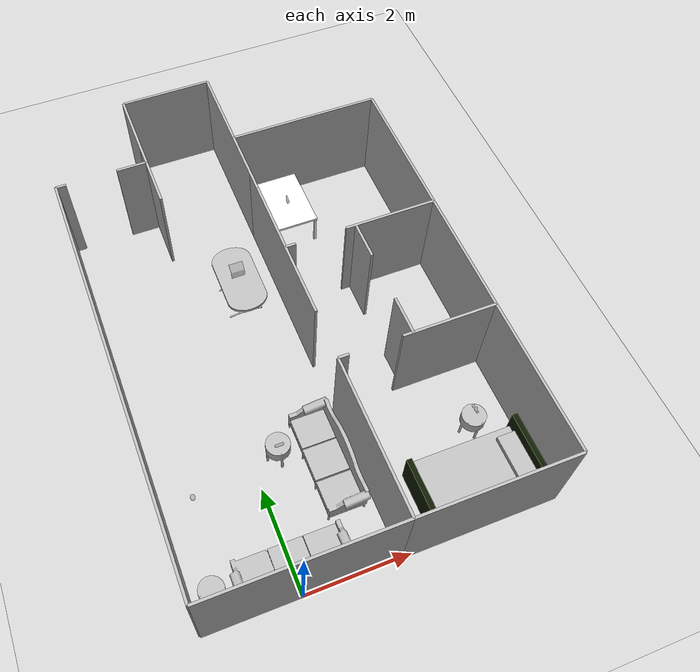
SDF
<sdf version="1.5">
 <world name="myworld">
  <include><uri>model://sun</uri></include>
  <include><uri>model://ground_plane</uri></include>
  <include><uri>model://hri_two_bedrooms</uri></include>
  <include><uri>model://hri_couch</uri><pose>1.25 2 0 0 0 3.1416</pose></include>
  <include><uri>model://hri_couch</uri><pose>0 0.5 0 0 0 1.5708</pose></include>
  <include><uri>model://hri_roundtable</uri><pose>0.5 2.5 0 0 0 0</pose></include>
  <include><uri>model://hri_roundtable</uri><pose>-1.4 0.5 0 0 0 0</pose></include>
  <include><uri>model://hri_dinnertable</uri><pose>1 6 0 0 0 0</pose></include>
  <include><uri>model://hri_bed</uri><pose>3.5 0.75 0 0 0 0</pose></include>
  <include><uri>model://hri_roundtable</uri><pose>4 1.75 0 0 0 0</pose></include>
  <include><uri>model://hri_desk</uri><pose>2.5 7.5 0 0 0 1.5708</pose></include>
  <include><uri>model://hri_roundtable</uri><pose>4.25 6 0 0 0 0</pose></include>
  <include><uri>model://hri_obj_laptop</uri><pose>1 6 0.9 0 0 0</pose></include>
  <include><uri>model://hri_obj_mug</uri><pose>-1.2 2 0.6 0 0 0</pose></include>
  <include><uri>model://hri_obj_glassescase</uri><pose>0.5 2.4 0.6 0 0 0</pose></include>
  <include><uri>model://hri_obj_statue</uri><pose>4 1.7 0.6 0 0 0</pose></include>
  <include><uri>model://hri_obj_fork</uri><pose>4.1 6 0.6 0 0 0</pose></include>
  <include><uri>model://hri_obj_monitor</uri><pose>2.5 7.2 0.9 0 0 0</pose></include>
 </world>
</sdf>

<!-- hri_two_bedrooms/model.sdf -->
<sdf version="1.4">
<model name="hri_two_bedrooms">
  <pose>0 0 0 0 0 0</pose>
  <static>true</static>

    <link name="wall1">
      <pose>0 0 1 0 0 0</pose>
      <inertial>
        <mass>1000.0</mass>
        <inertia> <!-- interias are tricky to compute -->
          <!-- http://answers.gazebosim.org/question/4372/the-inertia-matrix-explained/ -->
          <ixx>0.083</ixx>       <!-- for a box: ixx = 0.083 * mass * (y*y + z*z) -->
          <ixy>0.0</ixy>         <!-- for a box: ixy = 0 -->
          <ixz>0.0</ixz>         <!-- for a box: ixz = 0 -->
          <iyy>0.083</iyy>       <!-- for a box: iyy = 0.083 * mass * (x*x + z*z) -->
          <iyz>0.0</iyz>         <!-- for a box: iyz = 0 -->
          <izz>0.083</izz>       <!-- for a box: izz = 0.083 * mass * (x*x + y*y) -->
        </inertia>
      </inertial>
      <collision name="collision">
        <geometry>
          <box>
            <size>3.6    0.0500    2.0000</size>
          </box>
        </geometry>
      </collision>
      <visual name="visual">
        <geometry>
          <box>
            <size>3.6    0.0500    2.0000</size>
          </box>
        </geometry>
      </visual>
    </link>

    <link name="wall2">
      <pose>-1.8 4.2 1 0 0 0</pose>
      <inertial>
        <mass>1000.0</mass>
        <inertia> <!-- interias are tricky to compute -->
          <!-- http://answers.gazebosim.org/question/4372/the-inertia-matrix-explained/ -->
          <ixx>0.083</ixx>       <!-- for a box: ixx = 0.083 * mass * (y*y + z*z) -->
          <ixy>0.0</ixy>         <!-- for a box: ixy = 0 -->
          <ixz>0.0</ixz>         <!-- for a box: ixz = 0 -->
          <iyy>0.083</iyy>       <!-- for a box: iyy = 0.083 * mass * (x*x + z*z) -->
          <iyz>0.0</iyz>         <!-- for a box: iyz = 0 -->
          <izz>0.083</izz>       <!-- for a box: izz = 0.083 * mass * (x*x + y*y) -->
        </inertia>
      </inertial>
      <collision name="collision">
        <geometry>
          <box>
            <size>0.0500    8.4    2.0000</size>
          </box>
        </geometry>
      </collision>
      <visual name="visual">
        <geometry>
          <box>
            <size>0.0500    8.4    2.0000</size>
          </box>
        </geometry>
      </visual>
    </link>

    <link name="wall3">
      <pose>-1.7 8.4 1 0 0 0</pose>
      <inertial>
        <mass>1000.0</mass>
        <inertia> <!-- interias are tricky to compute -->
          <!-- http://answers.gazebosim.org/question/4372/the-inertia-matrix-explained/ -->
          <ixx>0.083</ixx>       <!-- for a box: ixx = 0.083 * mass * (y*y + z*z) -->
          <ixy>0.0</ixy>         <!-- for a box: ixy = 0 -->
          <ixz>0.0</ixz>         <!-- for a box: ixz = 0 -->
          <iyy>0.083</iyy>       <!-- for a box: iyy = 0.083 * mass * (x*x + z*z) -->
          <iyz>0.0</iyz>         <!-- for a box: iyz = 0 -->
          <izz>0.083</izz>       <!-- for a box: izz = 0.083 * mass * (x*x + y*y) -->
        </inertia>
      </inertial>
      <collision name="collision">
        <geometry>
          <box>
            <size>0.2    0.0500    2.0000</size>
          </box>
        </geometry>
      </collision>
      <visual name="visual">
        <geometry>
          <box>
            <size>0.2    0.0500    2.0000</size>
          </box>
        </geometry>
      </visual>
    </link>

    <link name="wall4">
      <pose>-0.3 8.4 1 0 0 0</pose>
      <inertial>
        <mass>1000.0</mass>
        <inertia> <!-- interias are tricky to compute -->
          <!-- http://answers.gazebosim.org/question/4372/the-inertia-matrix-explained/ -->
          <ixx>0.083</ixx>       <!-- for a box: ixx = 0.083 * mass * (y*y + z*z) -->
          <ixy>0.0</ixy>         <!-- for a box: ixy = 0 -->
          <ixz>0.0</ixz>         <!-- for a box: ixz = 0 -->
          <iyy>0.083</iyy>       <!-- for a box: iyy = 0.083 * mass * (x*x + z*z) -->
          <iyz>0.0</iyz>         <!-- for a box: iyz = 0 -->
          <izz>0.083</izz>       <!-- for a box: izz = 0.083 * mass * (x*x + y*y) -->
        </inertia>
      </inertial>
      <collision name="collision">
        <geometry>
          <box>
            <size>0.6    0.0500    2.0000</size>
          </box>
        </geometry>
      </collision>
      <visual name="visual">
        <geometry>
          <box>
            <size>0.6    0.0500    2.0000</size>
          </box>
        </geometry>
      </visual>
    </link>

    <link name="wall5">
      <pose>0 9.25 1 0 0 0</pose>
      <inertial>
        <mass>1000.0</mass>
        <inertia> <!-- interias are tricky to compute -->
          <!-- http://answers.gazebosim.org/question/4372/the-inertia-matrix-explained/ -->
          <ixx>0.083</ixx>       <!-- for a box: ixx = 0.083 * mass * (y*y + z*z) -->
          <ixy>0.0</ixy>         <!-- for a box: ixy = 0 -->
          <ixz>0.0</ixz>         <!-- for a box: ixz = 0 -->
          <iyy>0.083</iyy>       <!-- for a box: iyy = 0.083 * mass * (x*x + z*z) -->
          <iyz>0.0</iyz>         <!-- for a box: iyz = 0 -->
          <izz>0.083</izz>       <!-- for a box: izz = 0.083 * mass * (x*x + y*y) -->
        </inertia>
      </inertial>
      <collision name="collision">
        <geometry>
          <box>
            <size>0.0500    1.7    2.0000</size>
          </box>
        </geometry>
      </collision>
      <visual name="visual">
        <geometry>
          <box>
            <size>0.0500    1.7    2.0000</size>
          </box>
        </geometry>
      </visual>
    </link>

    <link name="wall6">
      <pose>0.9 10.1 1 0 0 0</pose>
      <inertial>
        <mass>1000.0</mass>
        <inertia> <!-- interias are tricky to compute -->
          <!-- http://answers.gazebosim.org/question/4372/the-inertia-matrix-explained/ -->
          <ixx>0.083</ixx>       <!-- for a box: ixx = 0.083 * mass * (y*y + z*z) -->
          <ixy>0.0</ixy>         <!-- for a box: ixy = 0 -->
          <ixz>0.0</ixz>         <!-- for a box: ixz = 0 -->
          <iyy>0.083</iyy>       <!-- for a box: iyy = 0.083 * mass * (x*x + z*z) -->
          <iyz>0.0</iyz>         <!-- for a box: iyz = 0 -->
          <izz>0.083</izz>       <!-- for a box: izz = 0.083 * mass * (x*x + y*y) -->
        </inertia>
      </inertial>
      <collision name="collision">
        <geometry>
          <box>
            <size>1.8    0.0500    2.0000</size>
          </box>
        </geometry>
      </collision>
      <visual name="visual">
        <geometry>
          <box>
            <size>1.8    0.0500    2.0000</size>
          </box>
        </geometry>
      </visual>
    </link>

    <link name="wall7">
      <pose>1.8 8.55 1 0 0 0</pose>
      <inertial>
        <mass>1000.0</mass>
        <inertia> <!-- interias are tricky to compute -->
          <!-- http://answers.gazebosim.org/question/4372/the-inertia-matrix-explained/ -->
          <ixx>0.083</ixx>       <!-- for a box: ixx = 0.083 * mass * (y*y + z*z) -->
          <ixy>0.0</ixy>         <!-- for a box: ixy = 0 -->
          <ixz>0.0</ixz>         <!-- for a box: ixz = 0 -->
          <iyy>0.083</iyy>       <!-- for a box: iyy = 0.083 * mass * (x*x + z*z) -->
          <iyz>0.0</iyz>         <!-- for a box: iyz = 0 -->
          <izz>0.083</izz>       <!-- for a box: izz = 0.083 * mass * (x*x + y*y) -->
        </inertia>
      </inertial>
      <collision name="collision">
        <geometry>
          <box>
            <size>0.0500    3.1    2.0000</size>
          </box>
        </geometry>
      </collision>
      <visual name="visual">
        <geometry>
          <box>
            <size>0.0500    3.1    2.0000</size>
          </box>
        </geometry>
      </visual>
    </link>

    <link name="wall8">
      <pose>3.3 8.4 1 0 0 0</pose>
      <inertial>
        <mass>1000.0</mass>
        <inertia> <!-- interias are tricky to compute -->
          <!-- http://answers.gazebosim.org/question/4372/the-inertia-matrix-explained/ -->
          <ixx>0.083</ixx>       <!-- for a box: ixx = 0.083 * mass * (y*y + z*z) -->
          <ixy>0.0</ixy>         <!-- for a box: ixy = 0 -->
          <ixz>0.0</ixz>         <!-- for a box: ixz = 0 -->
          <iyy>0.083</iyy>       <!-- for a box: iyy = 0.083 * mass * (x*x + z*z) -->
          <iyz>0.0</iyz>         <!-- for a box: iyz = 0 -->
          <izz>0.083</izz>       <!-- for a box: izz = 0.083 * mass * (x*x + y*y) -->
        </inertia>
      </inertial>
      <collision name="collision">
        <geometry>
          <box>
            <size>3.0    0.0500    2.0000</size>
          </box>
        </geometry>
      </collision>
      <visual name="visual">
        <geometry>
          <box>
            <size>3.0    0.0500    2.0000</size>
          </box>
        </geometry>
      </visual>
    </link>

    <link name="wall9">
      <pose>4.8 4.2 1 0 0 0</pose>
      <inertial>
        <mass>1000.0</mass>
        <inertia> <!-- interias are tricky to compute -->
          <!-- http://answers.gazebosim.org/question/4372/the-inertia-matrix-explained/ -->
          <ixx>0.083</ixx>       <!-- for a box: ixx = 0.083 * mass * (y*y + z*z) -->
          <ixy>0.0</ixy>         <!-- for a box: ixy = 0 -->
          <ixz>0.0</ixz>         <!-- for a box: ixz = 0 -->
          <iyy>0.083</iyy>       <!-- for a box: iyy = 0.083 * mass * (x*x + z*z) -->
          <iyz>0.0</iyz>         <!-- for a box: iyz = 0 -->
          <izz>0.083</izz>       <!-- for a box: izz = 0.083 * mass * (x*x + y*y) -->
        </inertia>
      </inertial>
      <collision name="collision">
        <geometry>
          <box>
            <size>0.0500    8.4    2.0000</size>
          </box>
        </geometry>
      </collision>
      <visual name="visual">
        <geometry>
          <box>
            <size>0.0500    8.4    2.0000</size>
          </box>
        </geometry>
      </visual>
    </link>

    <link name="wall10">
      <pose>3.3 0 1 0 0 0</pose>
      <inertial>
        <mass>1000.0</mass>
        <inertia> <!-- interias are tricky to compute -->
          <!-- http://answers.gazebosim.org/question/4372/the-inertia-matrix-explained/ -->
          <ixx>0.083</ixx>       <!-- for a box: ixx = 0.083 * mass * (y*y + z*z) -->
          <ixy>0.0</ixy>         <!-- for a box: ixy = 0 -->
          <ixz>0.0</ixz>         <!-- for a box: ixz = 0 -->
          <iyy>0.083</iyy>       <!-- for a box: iyy = 0.083 * mass * (x*x + z*z) -->
          <iyz>0.0</iyz>         <!-- for a box: iyz = 0 -->
          <izz>0.083</izz>       <!-- for a box: izz = 0.083 * mass * (x*x + y*y) -->
        </inertia>
      </inertial>
      <collision name="collision">
        <geometry>
          <box>
            <size>3.0    0.0500    2.0000</size>
          </box>
        </geometry>
      </collision>
      <visual name="visual">
        <geometry>
          <box>
            <size>3.0    0.0500    2.0000</size>
          </box>
        </geometry>
      </visual>
    </link>

    <link name="wall11">
      <pose>1.8 1.5 1 0 0 0</pose>
      <inertial>
        <mass>1000.0</mass>
        <inertia> <!-- interias are tricky to compute -->
          <!-- http://answers.gazebosim.org/question/4372/the-inertia-matrix-explained/ -->
          <ixx>0.083</ixx>       <!-- for a box: ixx = 0.083 * mass * (y*y + z*z) -->
          <ixy>0.0</ixy>         <!-- for a box: ixy = 0 -->
          <ixz>0.0</ixz>         <!-- for a box: ixz = 0 -->
          <iyy>0.083</iyy>       <!-- for a box: iyy = 0.083 * mass * (x*x + z*z) -->
          <iyz>0.0</iyz>         <!-- for a box: iyz = 0 -->
          <izz>0.083</izz>       <!-- for a box: izz = 0.083 * mass * (x*x + y*y) -->
        </inertia>
      </inertial>
      <collision name="collision">
        <geometry>
          <box>
            <size>0.0500    3.0    2.0000</size>
          </box>
        </geometry>
      </collision>
      <visual name="visual">
        <geometry>
          <box>
            <size>0.0500    3.0    2.0000</size>
          </box>
        </geometry>
      </visual>
    </link>

    <link name="wall12">
      <pose>1.8 5.7 1 0 0 0</pose>
      <inertial>
        <mass>1000.0</mass>
        <inertia> <!-- interias are tricky to compute -->
          <!-- http://answers.gazebosim.org/question/4372/the-inertia-matrix-explained/ -->
          <ixx>0.083</ixx>       <!-- for a box: ixx = 0.083 * mass * (y*y + z*z) -->
          <ixy>0.0</ixy>         <!-- for a box: ixy = 0 -->
          <ixz>0.0</ixz>         <!-- for a box: ixz = 0 -->
          <iyy>0.083</iyy>       <!-- for a box: iyy = 0.083 * mass * (x*x + z*z) -->
          <iyz>0.0</iyz>         <!-- for a box: iyz = 0 -->
          <izz>0.083</izz>       <!-- for a box: izz = 0.083 * mass * (x*x + y*y) -->
        </inertia>
      </inertial>
      <collision name="collision">
        <geometry>
          <box>
            <size>0.0500    3.4    2.0000</size>
          </box>
        </geometry>
      </collision>
      <visual name="visual">
        <geometry>
          <box>
            <size>0.0500    3.4    2.0000</size>
          </box>
        </geometry>
      </visual>
    </link>

    <link name="wall13">
      <pose>1.9 5.5 1 0 0 0</pose>
      <inertial>
        <mass>1000.0</mass>
        <inertia> <!-- interias are tricky to compute -->
          <!-- http://answers.gazebosim.org/question/4372/the-inertia-matrix-explained/ -->
          <ixx>0.083</ixx>       <!-- for a box: ixx = 0.083 * mass * (y*y + z*z) -->
          <ixy>0.0</ixy>         <!-- for a box: ixy = 0 -->
          <ixz>0.0</ixz>         <!-- for a box: ixz = 0 -->
          <iyy>0.083</iyy>       <!-- for a box: iyy = 0.083 * mass * (x*x + z*z) -->
          <iyz>0.0</iyz>         <!-- for a box: iyz = 0 -->
          <izz>0.083</izz>       <!-- for a box: izz = 0.083 * mass * (x*x + y*y) -->
        </inertia>
      </inertial>
      <collision name="collision">
        <geometry>
          <box>
            <size>0.2    0.0500    2.0000</size>
          </box>
        </geometry>
      </collision>
      <visual name="visual">
        <geometry>
          <box>
            <size>0.2    0.0500    2.0000</size>
          </box>
        </geometry>
      </visual>
    </link>

    <link name="wall14">
      <pose>3.9 5.5 1 0 0 0</pose>
      <inertial>
        <mass>1000.0</mass>
        <inertia> <!-- interias are tricky to compute -->
          <!-- http://answers.gazebosim.org/question/4372/the-inertia-matrix-explained/ -->
          <ixx>0.083</ixx>       <!-- for a box: ixx = 0.083 * mass * (y*y + z*z) -->
          <ixy>0.0</ixy>         <!-- for a box: ixy = 0 -->
          <ixz>0.0</ixz>         <!-- for a box: ixz = 0 -->
          <iyy>0.083</iyy>       <!-- for a box: iyy = 0.083 * mass * (x*x + z*z) -->
          <iyz>0.0</iyz>         <!-- for a box: iyz = 0 -->
          <izz>0.083</izz>       <!-- for a box: izz = 0.083 * mass * (x*x + y*y) -->
        </inertia>
      </inertial>
      <collision name="collision">
        <geometry>
          <box>
            <size>1.8    0.0500    2.0000</size>
          </box>
        </geometry>
      </collision>
      <visual name="visual">
        <geometry>
          <box>
            <size>1.8    0.0500    2.0000</size>
          </box>
        </geometry>
      </visual>
    </link>

    <link name="wall15">
      <pose>1.9 3 1 0 0 0</pose>
      <inertial>
        <mass>1000.0</mass>
        <inertia> <!-- interias are tricky to compute -->
          <!-- http://answers.gazebosim.org/question/4372/the-inertia-matrix-explained/ -->
          <ixx>0.083</ixx>       <!-- for a box: ixx = 0.083 * mass * (y*y + z*z) -->
          <ixy>0.0</ixy>         <!-- for a box: ixy = 0 -->
          <ixz>0.0</ixz>         <!-- for a box: ixz = 0 -->
          <iyy>0.083</iyy>       <!-- for a box: iyy = 0.083 * mass * (x*x + z*z) -->
          <iyz>0.0</iyz>         <!-- for a box: iyz = 0 -->
          <izz>0.083</izz>       <!-- for a box: izz = 0.083 * mass * (x*x + y*y) -->
        </inertia>
      </inertial>
      <collision name="collision">
        <geometry>
          <box>
            <size>0.2    0.0500    2.0000</size>
          </box>
        </geometry>
      </collision>
      <visual name="visual">
        <geometry>
          <box>
            <size>0.2    0.0500    2.0000</size>
          </box>
        </geometry>
      </visual>
    </link>

    <link name="wall16">
      <pose>3.9 3 1 0 0 0</pose>
      <inertial>
        <mass>1000.0</mass>
        <inertia> <!-- interias are tricky to compute -->
          <!-- http://answers.gazebosim.org/question/4372/the-inertia-matrix-explained/ -->
          <ixx>0.083</ixx>       <!-- for a box: ixx = 0.083 * mass * (y*y + z*z) -->
          <ixy>0.0</ixy>         <!-- for a box: ixy = 0 -->
          <ixz>0.0</ixz>         <!-- for a box: ixz = 0 -->
          <iyy>0.083</iyy>       <!-- for a box: iyy = 0.083 * mass * (x*x + z*z) -->
          <iyz>0.0</iyz>         <!-- for a box: iyz = 0 -->
          <izz>0.083</izz>       <!-- for a box: izz = 0.083 * mass * (x*x + y*y) -->
        </inertia>
      </inertial>
      <collision name="collision">
        <geometry>
          <box>
            <size>1.8    0.0500    2.0000</size>
          </box>
        </geometry>
      </collision>
      <visual name="visual">
        <geometry>
          <box>
            <size>1.8    0.0500    2.0000</size>
          </box>
        </geometry>
      </visual>
    </link>

    <link name="wall17">
      <pose>3.9 3 1 0 0 0</pose>
      <inertial>
        <mass>1000.0</mass>
        <inertia> <!-- interias are tricky to compute -->
          <!-- http://answers.gazebosim.org/question/4372/the-inertia-matrix-explained/ -->
          <ixx>0.083</ixx>       <!-- for a box: ixx = 0.083 * mass * (y*y + z*z) -->
          <ixy>0.0</ixy>         <!-- for a box: ixy = 0 -->
          <ixz>0.0</ixz>         <!-- for a box: ixz = 0 -->
          <iyy>0.083</iyy>       <!-- for a box: iyy = 0.083 * mass * (x*x + z*z) -->
          <iyz>0.0</iyz>         <!-- for a box: iyz = 0 -->
          <izz>0.083</izz>       <!-- for a box: izz = 0.083 * mass * (x*x + y*y) -->
        </inertia>
      </inertial>
      <collision name="collision">
        <geometry>
          <box>
            <size>1.8    0.0500    2.0000</size>
          </box>
        </geometry>
      </collision>
      <visual name="visual">
        <geometry>
          <box>
            <size>1.8    0.0500    2.0000</size>
          </box>
        </geometry>
      </visual>
    </link>

    <link name="wall18">
      <pose>3.2 5.125 1 0 0 0</pose>
      <inertial>
        <mass>1000.0</mass>
        <inertia> <!-- interias are tricky to compute -->
          <!-- http://answers.gazebosim.org/question/4372/the-inertia-matrix-explained/ -->
          <ixx>0.083</ixx>       <!-- for a box: ixx = 0.083 * mass * (y*y + z*z) -->
          <ixy>0.0</ixy>         <!-- for a box: ixy = 0 -->
          <ixz>0.0</ixz>         <!-- for a box: ixz = 0 -->
          <iyy>0.083</iyy>       <!-- for a box: iyy = 0.083 * mass * (x*x + z*z) -->
          <iyz>0.0</iyz>         <!-- for a box: iyz = 0 -->
          <izz>0.083</izz>       <!-- for a box: izz = 0.083 * mass * (x*x + y*y) -->
        </inertia>
      </inertial>
      <collision name="collision">
        <geometry>
          <box>
            <size>0.0500    0.75    2.0000</size>
          </box>
        </geometry>
      </collision>
      <visual name="visual">
        <geometry>
          <box>
            <size>0.0500    0.75    2.0000</size>
          </box>
        </geometry>
      </visual>
    </link>

    <link name="wall19">
      <pose>3.2 3.375 1 0 0 0</pose>
      <inertial>
        <mass>1000.0</mass>
        <inertia> <!-- interias are tricky to compute -->
          <!-- http://answers.gazebosim.org/question/4372/the-inertia-matrix-explained/ -->
          <ixx>0.083</ixx>       <!-- for a box: ixx = 0.083 * mass * (y*y + z*z) -->
          <ixy>0.0</ixy>         <!-- for a box: ixy = 0 -->
          <ixz>0.0</ixz>         <!-- for a box: ixz = 0 -->
          <iyy>0.083</iyy>       <!-- for a box: iyy = 0.083 * mass * (x*x + z*z) -->
          <iyz>0.0</iyz>         <!-- for a box: iyz = 0 -->
          <izz>0.083</izz>       <!-- for a box: izz = 0.083 * mass * (x*x + y*y) -->
        </inertia>
      </inertial>
      <collision name="collision">
        <geometry>
          <box>
            <size>0.0500    0.75    2.0000</size>
          </box>
        </geometry>
      </collision>
      <visual name="visual">
        <geometry>
          <box>
            <size>0.0500    0.75    2.0000</size>
          </box>
        </geometry>
      </visual>
    </link>

    <link name="wall20">
      <pose>0 8.1 1 0 0 0</pose>
      <inertial>
        <mass>1000.0</mass>
        <inertia> <!-- interias are tricky to compute -->
          <!-- http://answers.gazebosim.org/question/4372/the-inertia-matrix-explained/ -->
          <ixx>0.083</ixx>       <!-- for a box: ixx = 0.083 * mass * (y*y + z*z) -->
          <ixy>0.0</ixy>         <!-- for a box: ixy = 0 -->
          <ixz>0.0</ixz>         <!-- for a box: ixz = 0 -->
          <iyy>0.083</iyy>       <!-- for a box: iyy = 0.083 * mass * (x*x + z*z) -->
          <iyz>0.0</iyz>         <!-- for a box: iyz = 0 -->
          <izz>0.083</izz>       <!-- for a box: izz = 0.083 * mass * (x*x + y*y) -->
        </inertia>
      </inertial>
      <collision name="collision">
        <geometry>
          <box>
            <size>0.0500    1.4    2.0000</size>
          </box>
        </geometry>
      </collision>
      <visual name="visual">
        <geometry>
          <box>
            <size>0.0500    1.4    2.0000</size>
          </box>
        </geometry>
      </visual>
    </link>

  </model>
</sdf>

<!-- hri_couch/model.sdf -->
<sdf version="1.4">
<model name="couch">
  <pose>0 0 0 0 0 0</pose>
  <static>true</static>
    <link name="link">
      <pose>0 0 0 0 0 0</pose>
      <inertial>
        <mass>1.0</mass>
        <inertia> <!-- interias are tricky to compute -->
          <!-- http://answers.gazebosim.org/question/4372/the-inertia-matrix-explained/ -->
          <ixx>0.083</ixx>       <!-- for a box: ixx = 0.083 * mass * (y*y + z*z) -->
          <ixy>0.0</ixy>         <!-- for a box: ixy = 0 -->
          <ixz>0.0</ixz>         <!-- for a box: ixz = 0 -->
          <iyy>0.083</iyy>       <!-- for a box: iyy = 0.083 * mass * (x*x + z*z) -->
          <iyz>0.0</iyz>         <!-- for a box: iyz = 0 -->
          <izz>0.083</izz>       <!-- for a box: izz = 0.083 * mass * (x*x + y*y) -->
        </inertia>
      </inertial>
      <collision name="collision">
	<pose>0 0 0 1.5708 0 0</pose>
        <geometry>
	  <mesh>
	    <uri>model://hri_couch/meshes/couch.dae</uri>
	    <scale>1 1 1</scale>
	  </mesh>
        </geometry>
      </collision>
      <visual name="visual">
	<pose>0 0 0 1.5708 0 0</pose>
        <geometry>
	  <mesh>
	    <uri>model://hri_couch/meshes/couch.dae</uri>
	    <scale>1 1 1</scale>
	  </mesh>
        </geometry>
      </visual>
    </link>
  </model>
</sdf>

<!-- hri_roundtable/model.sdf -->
<sdf version="1.4">
<model name="round table">
  <pose>0 0 0 0 0 0</pose>
  <static>true</static>
    <link name="link">
      <pose>0 0 0 0 0 0</pose>
      <inertial>
        <mass>1.0</mass>
        <inertia> <!-- interias are tricky to compute -->
          <!-- http://answers.gazebosim.org/question/4372/the-inertia-matrix-explained/ -->
          <ixx>0.083</ixx>       <!-- for a box: ixx = 0.083 * mass * (y*y + z*z) -->
          <ixy>0.0</ixy>         <!-- for a box: ixy = 0 -->
          <ixz>0.0</ixz>         <!-- for a box: ixz = 0 -->
          <iyy>0.083</iyy>       <!-- for a box: iyy = 0.083 * mass * (x*x + z*z) -->
          <iyz>0.0</iyz>         <!-- for a box: iyz = 0 -->
          <izz>0.083</izz>       <!-- for a box: izz = 0.083 * mass * (x*x + y*y) -->
        </inertia>
      </inertial>
      <collision name="collision">
	<pose>0 0 0 1.5708 0 0</pose>
        <geometry>
	  <mesh>
	    <uri>model://hri_roundtable/meshes/roundtable.dae</uri>
	    <scale>1 1 1</scale>
	  </mesh>
        </geometry>
      </collision>
      <visual name="visual">
	<pose>0 0 0 1.5708 0 0</pose>
        <geometry>
	  <mesh>
	    <uri>model://hri_roundtable/meshes/roundtable.dae</uri>
	    <scale>1 1 1</scale>
	  </mesh>
        </geometry>
      </visual>
    </link>
  </model>
</sdf>

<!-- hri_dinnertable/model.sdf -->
<sdf version="1.4">
<model name="dinner table">
  <pose>0 0 0 0 0 0</pose>
  <static>true</static>
    <link name="link">
      <pose>0 0 0 0 0 0</pose>
      <inertial>
        <mass>1.0</mass>
        <inertia> <!-- interias are tricky to compute -->
          <!-- http://answers.gazebosim.org/question/4372/the-inertia-matrix-explained/ -->
          <ixx>0.083</ixx>       <!-- for a box: ixx = 0.083 * mass * (y*y + z*z) -->
          <ixy>0.0</ixy>         <!-- for a box: ixy = 0 -->
          <ixz>0.0</ixz>         <!-- for a box: ixz = 0 -->
          <iyy>0.083</iyy>       <!-- for a box: iyy = 0.083 * mass * (x*x + z*z) -->
          <iyz>0.0</iyz>         <!-- for a box: iyz = 0 -->
          <izz>0.083</izz>       <!-- for a box: izz = 0.083 * mass * (x*x + y*y) -->
        </inertia>
      </inertial>
      <collision name="collision">
	<pose>0 0 0 1.5708 0 0</pose>
        <geometry>
	  <mesh>
	    <uri>model://hri_dinnertable/meshes/dinnertable.dae</uri>
	    <scale>1 1 1</scale>
	  </mesh>
        </geometry>
      </collision>
      <visual name="visual">
	<pose>0 0 0 1.5708 0 0</pose>
        <geometry>
	  <mesh>
	    <uri>model://hri_dinnertable/meshes/dinnertable.dae</uri>
	    <scale>1 1 1</scale>
	  </mesh>
        </geometry>
      </visual>
    </link>
  </model>
</sdf>

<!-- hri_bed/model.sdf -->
<sdf version="1.5">
<model name="bed">
  <static>true</static>
    <link name="link">
      <pose>0 0 0.6 0 0 0</pose>
      <inertial>
        <mass>1.0</mass>
        <inertia> <!-- interias are tricky to compute -->
          <!-- http://answers.gazebosim.org/question/4372/the-inertia-matrix-explained/ -->
          <ixx>0.083</ixx>       <!-- for a box: ixx = 0.083 * mass * (y*y + z*z) -->
          <ixy>0.0</ixy>         <!-- for a box: ixy = 0 -->
          <ixz>0.0</ixz>         <!-- for a box: ixz = 0 -->
          <iyy>0.083</iyy>       <!-- for a box: iyy = 0.083 * mass * (x*x + z*z) -->
          <iyz>0.0</iyz>         <!-- for a box: iyz = 0 -->
          <izz>0.083</izz>       <!-- for a box: izz = 0.083 * mass * (x*x + y*y) -->
        </inertia>
      </inertial>
      <collision name="collision">
        <geometry>
          <box>
            <size>2.0    1.1    0.10</size>
          </box>
        </geometry>
      </collision>
      <visual name="visual">
        <geometry>
          <box>
            <size>2.0    1.1    0.10</size>
          </box>
        </geometry>
      </visual>
    </link>

    <link name="link2">
      <pose>0 0 0.45 0 0 0</pose>
      <inertial>
        <mass>1.0</mass>
        <inertia> <!-- interias are tricky to compute -->
          <!-- http://answers.gazebosim.org/question/4372/the-inertia-matrix-explained/ -->
          <ixx>0.083</ixx>       <!-- for a box: ixx = 0.083 * mass * (y*y + z*z) -->
          <ixy>0.0</ixy>         <!-- for a box: ixy = 0 -->
          <ixz>0.0</ixz>         <!-- for a box: ixz = 0 -->
          <iyy>0.083</iyy>       <!-- for a box: iyy = 0.083 * mass * (x*x + z*z) -->
          <iyz>0.0</iyz>         <!-- for a box: iyz = 0 -->
          <izz>0.083</izz>       <!-- for a box: izz = 0.083 * mass * (x*x + y*y) -->
        </inertia>
      </inertial>
      <collision name="collision">
        <geometry>
          <box>
            <size>2.0    1.1    0.20</size>
          </box>
        </geometry>
      </collision>
      <visual name="visual">
        <geometry>
          <box>
            <size>2.0    1.1    0.20</size>
          </box>
        </geometry>
	<material>
	  <ambient>0.25 0 0 1</ambient>
	  <diffuse>0.05 0.1 0 1</diffuse>
	  <specular>0.1 0.1 0.1 1</specular>
	  <emissive>0 0 0 0</emissive>
	</material>
      </visual>
    </link>

    <link name="link3">
      <pose>1 0 0.5 0 0 0</pose>
      <inertial>
        <mass>1.0</mass>
        <inertia> <!-- interias are tricky to compute -->
          <!-- http://answers.gazebosim.org/question/4372/the-inertia-matrix-explained/ -->
          <ixx>0.083</ixx>       <!-- for a box: ixx = 0.083 * mass * (y*y + z*z) -->
          <ixy>0.0</ixy>         <!-- for a box: ixy = 0 -->
          <ixz>0.0</ixz>         <!-- for a box: ixz = 0 -->
          <iyy>0.083</iyy>       <!-- for a box: iyy = 0.083 * mass * (x*x + z*z) -->
          <iyz>0.0</iyz>         <!-- for a box: iyz = 0 -->
          <izz>0.083</izz>       <!-- for a box: izz = 0.083 * mass * (x*x + y*y) -->
        </inertia>
      </inertial>
      <collision name="collision">
        <geometry>
          <box>
            <size>0.1    1.2    1.0</size>
          </box>
        </geometry>
      </collision>
      <visual name="visual">
        <geometry>
          <box>
            <size>0.1    1.2    1.0</size>
          </box>
        </geometry>
	<material>
	  <ambient>0.25 0 0 1</ambient>
	  <diffuse>0.05 0.1 0 1</diffuse>
	  <specular>0.1 0.1 0.1 1</specular>
	  <emissive>0 0 0 0</emissive>
	</material>
      </visual>
    </link>

    <link name="link4">
      <pose>-1 0 0.35 0 0 0</pose>
      <inertial>
        <mass>1.0</mass>
        <inertia> <!-- interias are tricky to compute -->
          <!-- http://answers.gazebosim.org/question/4372/the-inertia-matrix-explained/ -->
          <ixx>0.083</ixx>       <!-- for a box: ixx = 0.083 * mass * (y*y + z*z) -->
          <ixy>0.0</ixy>         <!-- for a box: ixy = 0 -->
          <ixz>0.0</ixz>         <!-- for a box: ixz = 0 -->
          <iyy>0.083</iyy>       <!-- for a box: iyy = 0.083 * mass * (x*x + z*z) -->
          <iyz>0.0</iyz>         <!-- for a box: iyz = 0 -->
          <izz>0.083</izz>       <!-- for a box: izz = 0.083 * mass * (x*x + y*y) -->
        </inertia>
      </inertial>
      <collision name="collision">
        <geometry>
          <box>
            <size>0.1    1.2    0.70</size>
          </box>
        </geometry>
      </collision>
      <visual name="visual">
        <geometry>
          <box>
            <size>0.1    1.2    0.70</size>
          </box>
        </geometry>
	<material>
	  <ambient>0.25 0 0 1</ambient>
	  <diffuse>0.05 0.1 0 1</diffuse>
	  <specular>0.1 0.1 0.1 1</specular>
	  <emissive>0 0 0 0</emissive>
	</material>
      </visual>
    </link>

    <link name="link5">
      <pose>0.80 0 0.7 0 0 0</pose>
      <inertial>
        <mass>1.0</mass>
        <inertia> <!-- interias are tricky to compute -->
          <!-- http://answers.gazebosim.org/question/4372/the-inertia-matrix-explained/ -->
          <ixx>0.083</ixx>       <!-- for a box: ixx = 0.083 * mass * (y*y + z*z) -->
          <ixy>0.0</ixy>         <!-- for a box: ixy = 0 -->
          <ixz>0.0</ixz>         <!-- for a box: ixz = 0 -->
          <iyy>0.083</iyy>       <!-- for a box: iyy = 0.083 * mass * (x*x + z*z) -->
          <iyz>0.0</iyz>         <!-- for a box: iyz = 0 -->
          <izz>0.083</izz>       <!-- for a box: izz = 0.083 * mass * (x*x + y*y) -->
        </inertia>
      </inertial>
      <collision name="collision">
        <geometry>
          <box>
            <size>0.4    0.8    0.10</size>
          </box>
        </geometry>
      </collision>
      <visual name="visual">
        <geometry>
          <box>
            <size>0.4    0.8    0.10</size>
          </box>
        </geometry>
      </visual>
    </link>

  </model>
</sdf>

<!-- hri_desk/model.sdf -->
<sdf version="1.4">
<model name="hri_desk">
  <pose>0 0 0 0 0 0</pose>
  <static>true</static>

    <link name="wall1">
      <pose>0 0 0.685 0 0 0</pose>
      <inertial>
        <mass>1000.0</mass>
        <inertia> <!-- interias are tricky to compute -->
          <!-- http://answers.gazebosim.org/question/4372/the-inertia-matrix-explained/ -->
          <ixx>0.083</ixx>       <!-- for a box: ixx = 0.083 * mass * (y*y + z*z) -->
          <ixy>0.0</ixy>         <!-- for a box: ixy = 0 -->
          <ixz>0.0</ixz>         <!-- for a box: ixz = 0 -->
          <iyy>0.083</iyy>       <!-- for a box: iyy = 0.083 * mass * (x*x + z*z) -->
          <iyz>0.0</iyz>         <!-- for a box: iyz = 0 -->
          <izz>0.083</izz>       <!-- for a box: izz = 0.083 * mass * (x*x + y*y) -->
        </inertia>
      </inertial>
      <collision name="collision">
        <geometry>
          <box>
            <size>1.3    1.0    0.05</size>
          </box>
        </geometry>
      </collision>
      <visual name="visual">
        <geometry>
          <box>
            <size>1.3    1.0    0.05</size>
          </box>
        </geometry>
	<material>
          <ambient>0.5 0.5 0.3 1</ambient>
          <diffuse>1 1 1 1</diffuse>
          <specular>0.1 0.1 0.1 1</specular>
          <emissive>0 0 0 0</emissive>
        </material>
      </visual>
    </link>

    <link name="wall2">
      <pose>0.6    0.475    0.33 0 0 0</pose>
      <inertial>
        <mass>1000.0</mass>
        <inertia> <!-- interias are tricky to compute -->
          <!-- http://answers.gazebosim.org/question/4372/the-inertia-matrix-explained/ -->
          <ixx>0.083</ixx>       <!-- for a box: ixx = 0.083 * mass * (y*y + z*z) -->
          <ixy>0.0</ixy>         <!-- for a box: ixy = 0 -->
          <ixz>0.0</ixz>         <!-- for a box: ixz = 0 -->
          <iyy>0.083</iyy>       <!-- for a box: iyy = 0.083 * mass * (x*x + z*z) -->
          <iyz>0.0</iyz>         <!-- for a box: iyz = 0 -->
          <izz>0.083</izz>       <!-- for a box: izz = 0.083 * mass * (x*x + y*y) -->
        </inertia>
      </inertial>
      <collision name="collision">
        <geometry>
          <box>
            <size>0.0500    0.0500    0.66</size>
          </box>
        </geometry>
      </collision>
      <visual name="visual">
        <geometry>
          <box>
            <size>0.0500    0.0500    0.66</size>
          </box>
        </geometry>
	<material>
          <ambient>1 1 0.5 1</ambient>
          <diffuse>1 1 1 1</diffuse>
          <specular>0.1 0.1 0.1 1</specular>
          <emissive>0 0 0 0</emissive>
        </material>
      </visual>
    </link>

    <link name="wall3">
      <pose>0.6    -0.475    0.33 0 0 0</pose>
      <inertial>
        <mass>1000.0</mass>
        <inertia> <!-- interias are tricky to compute -->
          <!-- http://answers.gazebosim.org/question/4372/the-inertia-matrix-explained/ -->
          <ixx>0.083</ixx>       <!-- for a box: ixx = 0.083 * mass * (y*y + z*z) -->
          <ixy>0.0</ixy>         <!-- for a box: ixy = 0 -->
          <ixz>0.0</ixz>         <!-- for a box: ixz = 0 -->
          <iyy>0.083</iyy>       <!-- for a box: iyy = 0.083 * mass * (x*x + z*z) -->
          <iyz>0.0</iyz>         <!-- for a box: iyz = 0 -->
          <izz>0.083</izz>       <!-- for a box: izz = 0.083 * mass * (x*x + y*y) -->
        </inertia>
      </inertial>
      <collision name="collision">
        <geometry>
          <box>
            <size>0.0500    0.0500    0.66</size>
          </box>
        </geometry>
      </collision>
      <visual name="visual">
        <geometry>
          <box>
            <size>0.0500    0.0500    0.66</size>
          </box>
        </geometry>
	<material>
          <ambient>1 1 0.5 1</ambient>
          <diffuse>1 1 1 1</diffuse>
          <specular>0.1 0.1 0.1 1</specular>
          <emissive>0 0 0 0</emissive>
        </material>
      </visual>
    </link>

    <link name="wall4">
      <pose>-0.6    -0.475    0.33 0 0 0</pose>
      <inertial>
        <mass>1000.0</mass>
        <inertia> <!-- interias are tricky to compute -->
          <!-- http://answers.gazebosim.org/question/4372/the-inertia-matrix-explained/ -->
          <ixx>0.083</ixx>       <!-- for a box: ixx = 0.083 * mass * (y*y + z*z) -->
          <ixy>0.0</ixy>         <!-- for a box: ixy = 0 -->
          <ixz>0.0</ixz>         <!-- for a box: ixz = 0 -->
          <iyy>0.083</iyy>       <!-- for a box: iyy = 0.083 * mass * (x*x + z*z) -->
          <iyz>0.0</iyz>         <!-- for a box: iyz = 0 -->
          <izz>0.083</izz>       <!-- for a box: izz = 0.083 * mass * (x*x + y*y) -->
        </inertia>
      </inertial>
      <collision name="collision">
        <geometry>
          <box>
            <size>0.0500    0.0500    0.66</size>
          </box>
        </geometry>
      </collision>
      <visual name="visual">
        <geometry>
          <box>
            <size>0.0500    0.0500    0.66</size>
          </box>
        </geometry>
	<material>
          <ambient>1 1 0.5 1</ambient>
          <diffuse>1 1 1 1</diffuse>
          <specular>0.1 0.1 0.1 1</specular>
          <emissive>0 0 0 0</emissive>
        </material>
      </visual>
    </link>

    <link name="wall5">
      <pose>-0.6    0.475    0.33 0 0 0</pose>
      <inertial>
        <mass>1000.0</mass>
        <inertia> <!-- interias are tricky to compute -->
          <!-- http://answers.gazebosim.org/question/4372/the-inertia-matrix-explained/ -->
          <ixx>0.083</ixx>       <!-- for a box: ixx = 0.083 * mass * (y*y + z*z) -->
          <ixy>0.0</ixy>         <!-- for a box: ixy = 0 -->
          <ixz>0.0</ixz>         <!-- for a box: ixz = 0 -->
          <iyy>0.083</iyy>       <!-- for a box: iyy = 0.083 * mass * (x*x + z*z) -->
          <iyz>0.0</iyz>         <!-- for a box: iyz = 0 -->
          <izz>0.083</izz>       <!-- for a box: izz = 0.083 * mass * (x*x + y*y) -->
        </inertia>
      </inertial>
      <collision name="collision">
        <geometry>
          <box>
            <size>0.0500    0.0500    0.66</size>
          </box>
        </geometry>
      </collision>
      <visual name="visual">
        <geometry>
          <box>
            <size>0.0500    0.0500    0.66</size>
          </box>
        </geometry>
	<material>
          <ambient>1 1 0.5 1</ambient>
          <diffuse>1 1 1 1</diffuse>
          <specular>0.1 0.1 0.1 1</specular>
          <emissive>0 0 0 0</emissive>
        </material>
      </visual>
    </link>

  </model>
</sdf>

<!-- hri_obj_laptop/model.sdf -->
<sdf version="1.5">
  <model name="hri_obj_laptop">
    <link name="link">
      <pose>0 0 0 0 0 0</pose>
      <inertial>
        <mass>0.0599</mass>
        <inertia>
          <ixx>0.0003028961527030333</ixx>
          <ixy>0</ixy>
          <ixz>0</ixz>
          <iyy>0.0003028961527030333</iyy>
          <iyz>0</iyz>
          <izz>3.2876352372798436e-05</izz>
        </inertia>
      </inertial>

      <collision name="collision">
        <geometry>
          <mesh>
            <uri>model://hri_obj_laptop/meshes/laptop.dae</uri>
          </mesh>
        </geometry>
        <surface>
          <contact>
            <!-- typical acrylic plastic material properties -->
            <poissons_ratio>0.35</poissons_ratio>
            <elastic_modulus>3.102640776e+09</elastic_modulus>
            <ode>
              <kp>100000</kp>
              <kd>100</kd>
              <max_vel>100.0</max_vel>
              <min_depth>0.001</min_depth>
            </ode>
          </contact>
          <friction>
            <torsional>
              <coefficient>1.0</coefficient>
              <use_patch_radius>0</use_patch_radius>
              <surface_radius>0.01</surface_radius>
            </torsional>
          </friction>
        </surface>
      </collision>

      <visual name="visual">
        <geometry>
          <mesh>
            <uri>model://hri_obj_laptop/meshes/laptop.dae</uri>
          </mesh>
        </geometry>
        <material>
          <script>
            <uri>file://media/materials/scripts/gazebo.material</uri>
            <name>Gazebo/GreyTransparent</name>
          </script>
        </material>
      </visual>

    </link>
  </model>
</sdf>

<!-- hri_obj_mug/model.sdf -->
<sdf version="1.5">
  <model name="hri_obj_mug">
    <link name="link">
      <pose>0 0 0.065 0 0 0</pose>
      <inertial>
        <mass>0.0599</mass>
        <inertia>
          <ixx>0.0003028961527030333</ixx>
          <ixy>0</ixy>
          <ixz>0</ixz>
          <iyy>0.0003028961527030333</iyy>
          <iyz>0</iyz>
          <izz>3.2876352372798436e-05</izz>
        </inertia>
      </inertial>

      <collision name="collision">
        <geometry>
          <mesh>
            <uri>model://hri_obj_mug/meshes/mug.dae</uri>
          </mesh>
        </geometry>
        <surface>
          <contact>
            <!-- typical acrylic plastic material properties -->
            <poissons_ratio>0.35</poissons_ratio>
            <elastic_modulus>3.102640776e+09</elastic_modulus>
            <ode>
              <kp>100000</kp>
              <kd>100</kd>
              <max_vel>100.0</max_vel>
              <min_depth>0.001</min_depth>
            </ode>
          </contact>
          <friction>
            <torsional>
              <coefficient>1.0</coefficient>
              <use_patch_radius>0</use_patch_radius>
              <surface_radius>0.01</surface_radius>
            </torsional>
          </friction>
        </surface>
      </collision>

      <visual name="visual">
        <geometry>
          <mesh>
            <uri>model://hri_obj_mug/meshes/mug.dae</uri>
          </mesh>
        </geometry>
        <material>
          <script>
            <uri>file://media/materials/scripts/gazebo.material</uri>
            <name>Gazebo/GreyTransparent</name>
          </script>
        </material>
      </visual>

    </link>
  </model>
</sdf>

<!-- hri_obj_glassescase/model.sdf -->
<sdf version="1.5">
  <model name="hri_obj_glassescase">
    <link name="link">
      <pose>0 0 0.065 0 0 0</pose>
      <inertial>
        <mass>0.0599</mass>
        <inertia>
          <ixx>0.0003028961527030333</ixx>
          <ixy>0</ixy>
          <ixz>0</ixz>
          <iyy>0.0003028961527030333</iyy>
          <iyz>0</iyz>
          <izz>3.2876352372798436e-05</izz>
        </inertia>
      </inertial>

      <collision name="collision">
        <geometry>
          <mesh>
            <uri>model://hri_obj_glassescase/meshes/glassescase.dae</uri>
          </mesh>
        </geometry>
        <surface>
          <contact>
            <!-- typical acrylic plastic material properties -->
            <poissons_ratio>0.35</poissons_ratio>
            <elastic_modulus>3.102640776e+09</elastic_modulus>
            <ode>
              <kp>100000</kp>
              <kd>100</kd>
              <max_vel>100.0</max_vel>
              <min_depth>0.001</min_depth>
            </ode>
          </contact>
          <friction>
            <torsional>
              <coefficient>1.0</coefficient>
              <use_patch_radius>0</use_patch_radius>
              <surface_radius>0.01</surface_radius>
            </torsional>
          </friction>
        </surface>
      </collision>

      <visual name="visual">
        <geometry>
          <mesh>
            <uri>model://hri_obj_glassescase/meshes/glassescase.dae</uri>
          </mesh>
        </geometry>
        <material>
          <script>
            <uri>file://media/materials/scripts/gazebo.material</uri>
            <name>Gazebo/GreyTransparent</name>
          </script>
        </material>
      </visual>

    </link>
  </model>
</sdf>

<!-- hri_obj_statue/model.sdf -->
<sdf version="1.5">
  <model name="hri_obj_statue">
    <link name="link">
      <pose>0 0 0.15 0 0 0</pose>
      <inertial>
        <mass>0.0599</mass>
        <inertia>
          <ixx>0.0003028961527030333</ixx>
          <ixy>0</ixy>
          <ixz>0</ixz>
          <iyy>0.0003028961527030333</iyy>
          <iyz>0</iyz>
          <izz>3.2876352372798436e-05</izz>
        </inertia>
      </inertial>

      <collision name="collision">
        <geometry>
          <mesh>
            <uri>model://hri_obj_statue/meshes/statue.dae</uri>
          </mesh>
        </geometry>
        <surface>
          <contact>
            <!-- typical acrylic plastic material properties -->
            <poissons_ratio>0.35</poissons_ratio>
            <elastic_modulus>3.102640776e+09</elastic_modulus>
            <ode>
              <kp>100000</kp>
              <kd>100</kd>
              <max_vel>100.0</max_vel>
              <min_depth>0.001</min_depth>
            </ode>
          </contact>
          <friction>
            <torsional>
              <coefficient>1.0</coefficient>
              <use_patch_radius>0</use_patch_radius>
              <surface_radius>0.01</surface_radius>
            </torsional>
          </friction>
        </surface>
      </collision>

      <visual name="visual">
        <geometry>
          <mesh>
            <uri>model://hri_obj_statue/meshes/statue.dae</uri>
          </mesh>
        </geometry>
        <material>
          <script>
            <uri>file://media/materials/scripts/gazebo.material</uri>
            <name>Gazebo/GreyTransparent</name>
          </script>
        </material>
      </visual>

    </link>
  </model>
</sdf>

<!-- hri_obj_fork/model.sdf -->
<sdf version="1.5">
  <model name="hri_obj_fork">
    <link name="link">
      <pose>0 0 0.15 0 0 0</pose>
      <inertial>
        <mass>0.0599</mass>
        <inertia>
          <ixx>0.0003028961527030333</ixx>
          <ixy>0</ixy>
          <ixz>0</ixz>
          <iyy>0.0003028961527030333</iyy>
          <iyz>0</iyz>
          <izz>3.2876352372798436e-05</izz>
        </inertia>
      </inertial>

      <collision name="collision">
        <geometry>
          <mesh>
            <uri>model://hri_obj_fork/meshes/fork.dae</uri>
          </mesh>
        </geometry>
        <surface>
          <contact>
            <!-- typical acrylic plastic material properties -->
            <poissons_ratio>0.35</poissons_ratio>
            <elastic_modulus>3.102640776e+09</elastic_modulus>
            <ode>
              <kp>100000</kp>
              <kd>100</kd>
              <max_vel>100.0</max_vel>
              <min_depth>0.001</min_depth>
            </ode>
          </contact>
          <friction>
            <torsional>
              <coefficient>1.0</coefficient>
              <use_patch_radius>0</use_patch_radius>
              <surface_radius>0.01</surface_radius>
            </torsional>
          </friction>
        </surface>
      </collision>

      <visual name="visual">
        <geometry>
          <mesh>
            <uri>model://hri_obj_fork/meshes/fork.dae</uri>
          </mesh>
        </geometry>
        <material>
          <script>
            <uri>file://media/materials/scripts/gazebo.material</uri>
            <name>Gazebo/GreyTransparent</name>
          </script>
        </material>
      </visual>

    </link>
  </model>
</sdf>

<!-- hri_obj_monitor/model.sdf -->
<sdf version="1.5">
  <model name="hri_obj_monitor">
    <link name="link">
      <pose>0 0 0.15 0 0 0</pose>
      <inertial>
        <mass>0.0599</mass>
        <inertia>
          <ixx>0.0003028961527030333</ixx>
          <ixy>0</ixy>
          <ixz>0</ixz>
          <iyy>0.0003028961527030333</iyy>
          <iyz>0</iyz>
          <izz>3.2876352372798436e-05</izz>
        </inertia>
      </inertial>

      <collision name="collision">
        <geometry>
          <mesh>
            <uri>model://hri_obj_monitor/meshes/monitor.dae</uri>
          </mesh>
        </geometry>
        <surface>
          <contact>
            <!-- typical acrylic plastic material properties -->
            <poissons_ratio>0.35</poissons_ratio>
            <elastic_modulus>3.102640776e+09</elastic_modulus>
            <ode>
              <kp>100000</kp>
              <kd>100</kd>
              <max_vel>100.0</max_vel>
              <min_depth>0.001</min_depth>
            </ode>
          </contact>
          <friction>
            <torsional>
              <coefficient>1.0</coefficient>
              <use_patch_radius>0</use_patch_radius>
              <surface_radius>0.01</surface_radius>
            </torsional>
          </friction>
        </surface>
      </collision>

      <visual name="visual">
        <geometry>
          <mesh>
            <uri>model://hri_obj_monitor/meshes/monitor.dae</uri>
          </mesh>
        </geometry>
        <material>
          <script>
            <uri>file://media/materials/scripts/gazebo.material</uri>
            <name>Gazebo/GreyTransparent</name>
          </script>
        </material>
      </visual>

    </link>
  </model>
</sdf>
